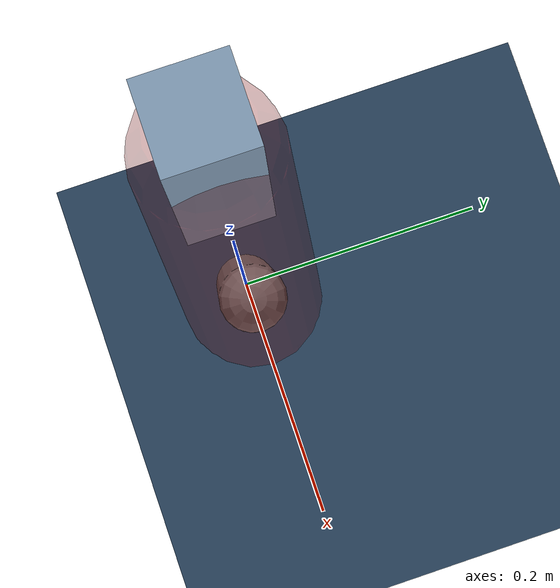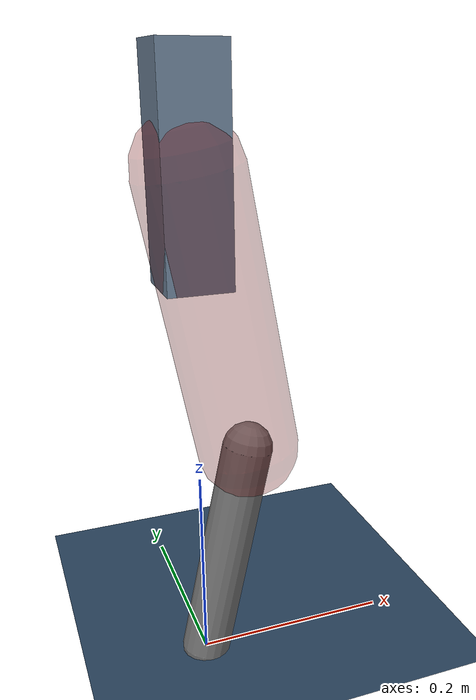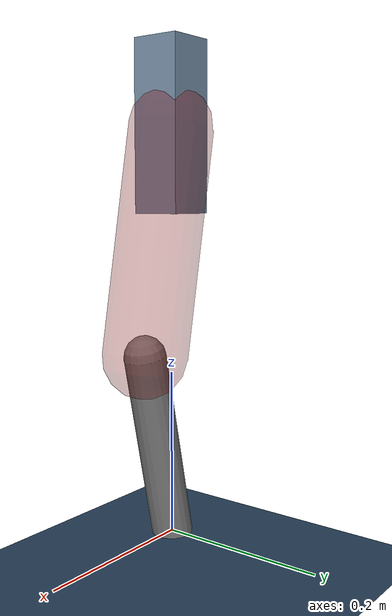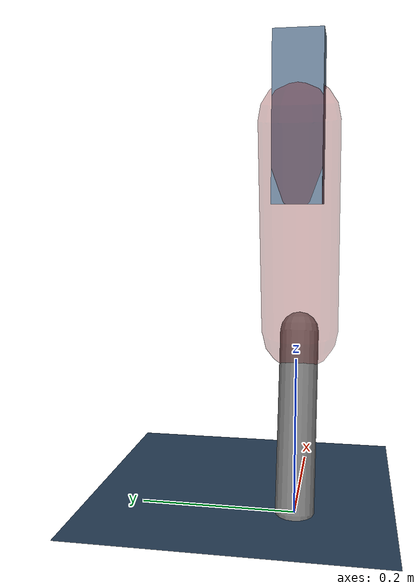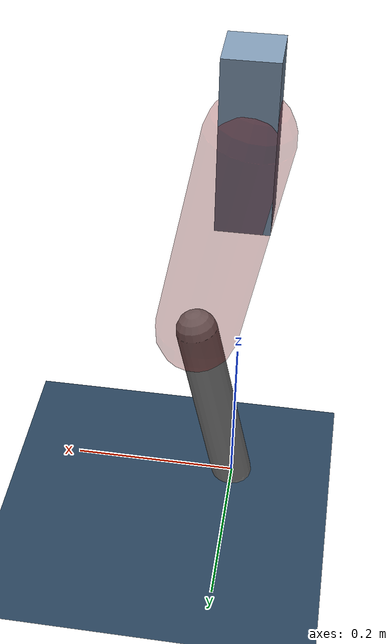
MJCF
<mujoco model="Hopper2D">
	<compiler inertiafromgeom="true" angle="radian" />
	<option timestep="0.001" integrator="implicit" cone="elliptic" solver="Newton" tolerance="1e-10" />

	<default>
		<geom contype="1" conaffinity="1" condim="3" friction="2 0.005 0.0001" solref="0.005 1" />
		<joint limited="true" damping="0.1" />
	</default>

	<asset>
		<texture name="skybox" type="skybox" builtin="gradient" rgb1=".4 .6 .8" rgb2="0 0 0" width="800" height="800" />
		<texture name="grid" type="2d" builtin="checker" rgb1=".1 .2 .3" rgb2=".2 .3 .4" width="300" height="300" mark="edge" markrgb=".2 .3 .4" />
		<material name="ground" texture="grid" texrepeat="1 1" texuniform="true" reflectance="0.1" />
		<material name="leg" rgba="0.5 0.6 0.7 1" />
	</asset>

	<worldbody>

		<geom name="floor" type="plane" size="5 5 0.25" material="ground" />

		<light directional="false" diffuse="0.8 0.8 0.8" specular="0.3 0.3 0.3" pos="0 0 2" dir="0 0 -1" />
		<light mode="targetbodycom" target="base" directional="false" diffuse="0.8 0.8 0.8" specular="0.3 0.3 0.3" pos="0 0 2" dir="0 0 -1" />

		<camera name="fixed" pos="0 -2 1" xyaxes="1 0 0 0 0 1" />
		<camera name="tracking" mode="trackcom" pos="0 -3 1" />

		<body name="root" pos="0 0 0.4921303934225413">
			<joint name="slide_x" type="slide" axis="1 0 0" range="-100 100" />
			<joint name="slide_z" type="slide" axis="0 0 1" range="0 10" />

			<body name="base" pos="0 0 0">
				<geom name="torso" type="box" size="0.03 0.03 0.1" mass="2.7009999999999996" material="leg" />

				<body name="link1" pos="0 0 0" euler="0 1.3852592127838836 0">
					<joint type="hinge" axis="0 -1 0" pos="0 0 0" name="hinge1" limited="true" range="-3.14 3.14" stiffness="0" damping="0.1" />
					<geom name="thigh" type="capsule" fromto="0 0 0 0.2695016759379835 0 0" size="0.05" rgba="0.5 0 0 0.3" mass="0.9073545250325554" />

					<body name="link2" pos="0.2695016759379835 0 0" euler="0 0.40091304946830264 0">
						<joint type="hinge" axis="0 -1 0" pos="0 0 0" name="hinge2" limited="true" range="-3.14 3.14" stiffness="0" damping="0.1" />
						<geom name="shank" type="capsule" fromto="0 0 0 0.2326287174845578 0 0" size="0.025" mass="0.428165845736102" />

					</body>
				</body>
			</body>
		</body>
	</worldbody>

	<actuator>
		<motor name="torque1" joint="hinge1" ctrlrange="-105.64893175330937 105.64893175330937" ctrllimited="true" gear="1" />
		<motor name="torque2" joint="hinge2" ctrlrange="-106.03682427539292 106.03682427539292" ctrllimited="true" gear="1" />
	</actuator>
</mujoco>
